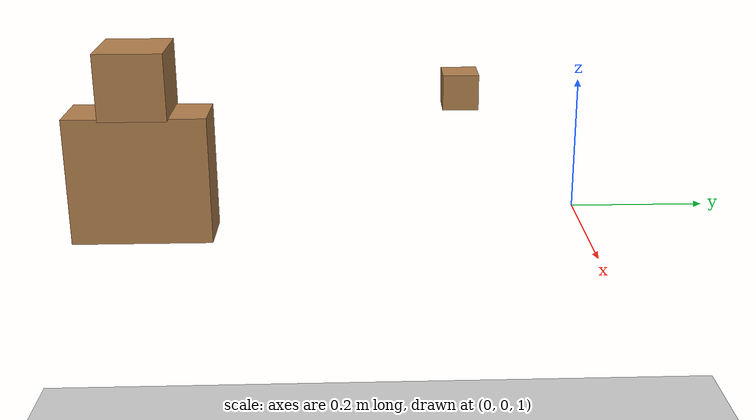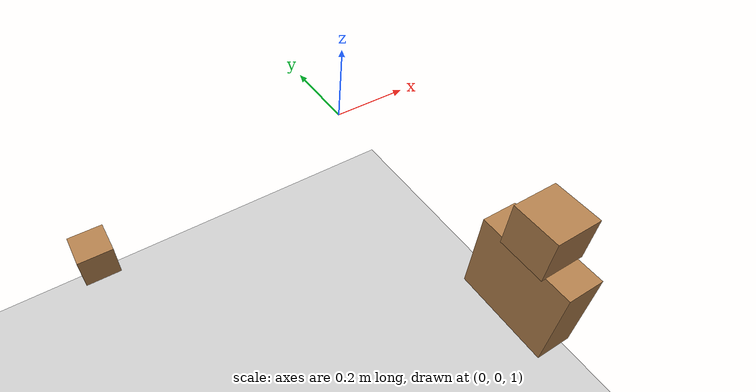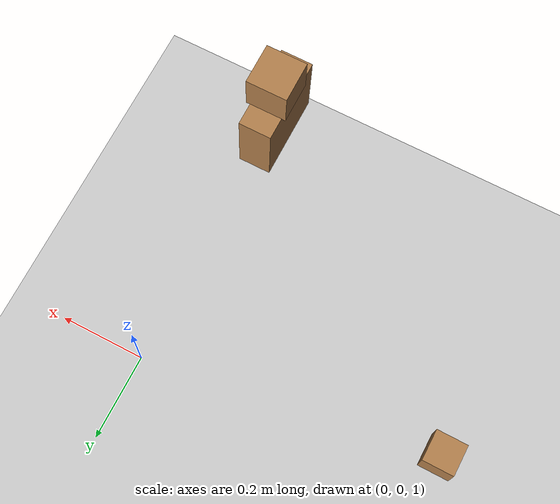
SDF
<sdf version="1.6">
 <world name="default">
  <model name="ground_plane">
   <static>1</static>
   <link name="ground_plane::link">
    <collision name="collision">
     <geometry><plane><normal>0 0 1</normal><size>100 100</size></plane></geometry>
     <surface>
      <contact><collide_bitmask>65535</collide_bitmask></contact>
      <friction><ode><mu>100</mu><mu2>50</mu2></ode></friction>
     </surface>
    </collision>
    <visual name="visual">
     <cast_shadows>0</cast_shadows>
     <geometry><plane><normal>0 0 1</normal><size>100 100</size></plane></geometry>
     <material>
      <script><uri>file://media/materials/scripts/gazebo.material</uri><name>Gazebo/Grey</name></script>
     </material>
    </visual>
   </link>
  </model>
  <model name="wood_cube_7_5cm">
   <link name="link">
    <pose>0 0 0.0375 0 -0 0</pose>
    <inertial>
     <mass>0.2249</mass>
     <inertia>
      <ixx>0.000210844</ixx>
      <ixy>0</ixy>
      <ixz>0</ixz>
      <iyy>0.000210844</iyy>
      <iyz>0</iyz>
      <izz>0.000210844</izz>
     </inertia>
    </inertial>
    <collision name="collision">
     <geometry><box><size>0.075 0.075 0.075</size></box></geometry>
     <surface>
      <contact>
       <poissons_ratio>0.347</poissons_ratio>
       <elastic_modulus>8.8e+09</elastic_modulus>
       <ode><kp>100000</kp><kd>100</kd><max_vel>100</max_vel><min_depth>0.001</min_depth></ode>
      </contact>
      <friction>
       <torsional>
        <coefficient>1</coefficient>
        <use_patch_radius>0</use_patch_radius>
        <surface_radius>0.01</surface_radius>
       </torsional>
      </friction>
     </surface>
    </collision>
    <visual name="visual">
     <geometry><box><size>0.075 0.075 0.075</size></box></geometry>
     <material>
      <script><uri>file://media/materials/scripts/gazebo.material</uri><name>Gazebo/Wood</name></script>
     </material>
    </visual>
   </link>
   <pose>-0.686548 -0.114674 0.963758 1.8e-05 -5.6e-05 -0.00635</pose>
  </model>
  <model name="wood_cube_10cm">
   <link name="link">
    <pose>0 0 0.05 0 -0 0</pose>
    <inertial>
     <mass>0.5167</mass>
     <inertia>
      <ixx>0.000861167</ixx>
      <ixy>0</ixy>
      <ixz>0</ixz>
      <iyy>0.000861167</iyy>
      <iyz>0</iyz>
      <izz>0.000861167</izz>
     </inertia>
    </inertial>
    <collision name="collision">
     <geometry><box><size>0.1 0.1 0.1</size></box></geometry>
     <surface>
      <contact>
       <poissons_ratio>0.347</poissons_ratio>
       <elastic_modulus>8.8e+09</elastic_modulus>
       <ode><kp>100000</kp><kd>100</kd><max_vel>100</max_vel><min_depth>0.001</min_depth></ode>
      </contact>
      <friction>
       <torsional>
        <coefficient>1</coefficient>
        <use_patch_radius>0</use_patch_radius>
        <surface_radius>0.01</surface_radius>
       </torsional>
      </friction>
     </surface>
    </collision>
    <visual name="visual">
     <geometry><box><size>0.1 0.1 0.1</size></box></geometry>
     <material>
      <script><uri>file://media/materials/scripts/gazebo.material</uri><name>Gazebo/Wood</name></script>
     </material>
    </visual>
   </link>
   <pose>-0.000111 -0.649971 1.15661 0.000211 -0.000356 2e-06</pose>
  </model>
  <model name="wood_cube_40cm">
   <link name="link">
    <pose>0 -0 0.05 0 -0 0</pose>
    <inertial>
     <mass>1.68019</mass>
     <inertia>
      <ixx>0.0114043</ixx>
      <ixy>0</ixy>
      <ixz>0</ixz>
      <iyy>0.00616284</iyy>
      <iyz>0</iyz>
      <izz>0.00703768</izz>
     </inertia>
    </inertial>
    <visual name="visual">
     <geometry><box><size>0.080089 0.209402 0.19391</size></box></geometry>
     <material>
      <script><uri>file://media/materials/scripts/gazebo.material</uri><name>Gazebo/Wood</name></script>
      <shader type="pixel"/>
      <ambient>1 1 1 1</ambient>
      <diffuse>1 1 1 1</diffuse>
      <specular>0.2 0.2 0.2 1</specular>
      <emissive>0 0 0 1</emissive>
     </material>
    </visual>
    <collision name="collision">
     <geometry><box><size>0.080089 0.209402 0.19391</size></box></geometry>
     <surface>
      <friction>
       <ode><mu>1</mu><mu2>1</mu2><fdir1>0 0 0</fdir1><slip1>0</slip1><slip2>0</slip2></ode>
       <torsional>
        <coefficient>1</coefficient>
        <patch_radius>0</patch_radius>
        <surface_radius>0.01</surface_radius>
        <use_patch_radius>0</use_patch_radius>
        <ode><slip>0</slip></ode>
       </torsional>
      </friction>
      <bounce><restitution_coefficient>0</restitution_coefficient><threshold>1e+06</threshold></bounce>
      <contact>
       <collide_without_contact>0</collide_without_contact>
       <collide_without_contact_bitmask>1</collide_without_contact_bitmask>
       <collide_bitmask>1</collide_bitmask>
       <ode>
        <soft_cfm>0</soft_cfm>
        <soft_erp>0.2</soft_erp>
        <kp>100000</kp>
        <kd>100</kd>
        <max_vel>100</max_vel>
        <min_depth>0.001</min_depth>
       </ode>
       <bullet>
        <split_impulse>1</split_impulse>
        <split_impulse_penetration_threshold>-0.01</split_impulse_penetration_threshold>
        <soft_cfm>0</soft_cfm>
        <soft_erp>0.2</soft_erp>
        <kp>100000</kp>
        <kd>100</kd>
       </bullet>
      </contact>
     </surface>
    </collision>
   </link>
   <static>0</static>
   <pose>-0.000485 -0.650224 1.01068 0.000215 -0.000361 -0.002336</pose>
  </model>
 </world>
</sdf>
